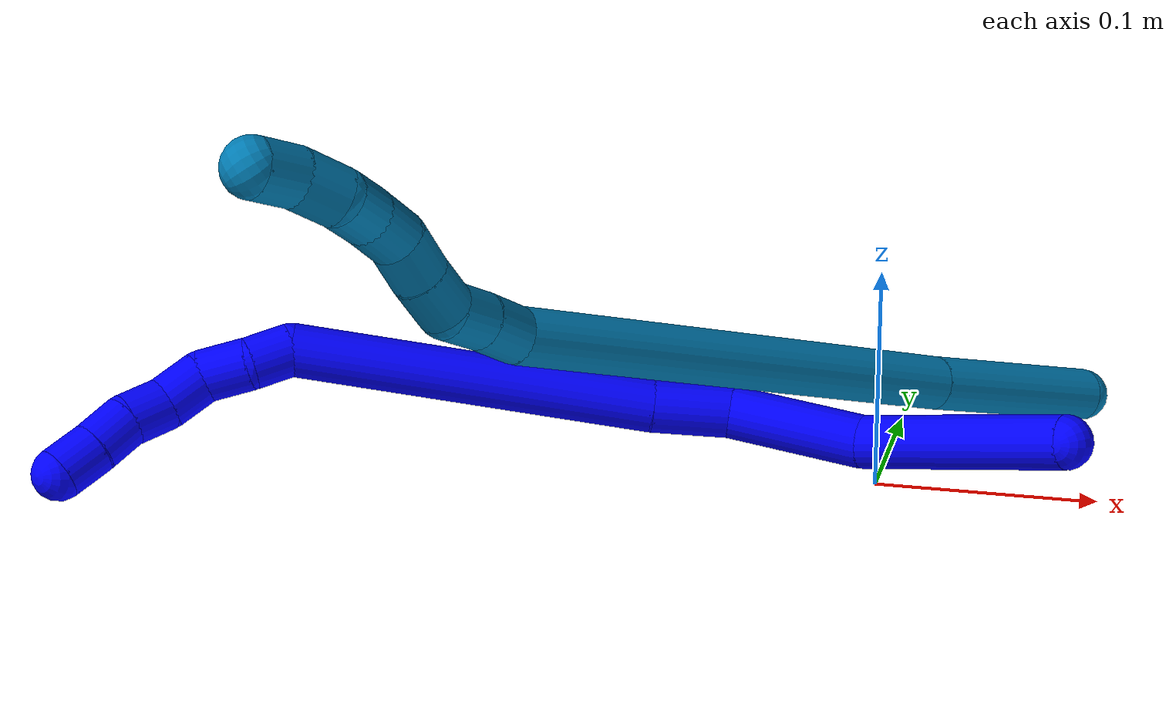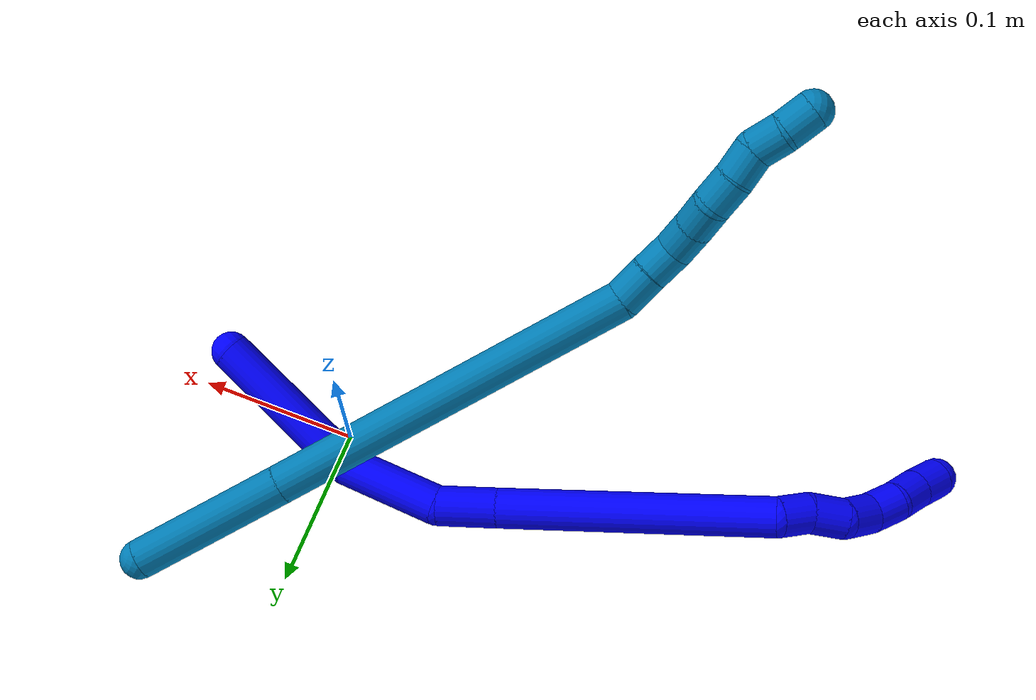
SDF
<sdf version="1.7">
 <world name="default">
  <model name="1">
   <static>0</static>
   <link name="1">
    <collision name="collision-cylinder-e_1_1_4">
     <pose>-0.045508 -0.024077 0.001701 1.50025 -1.08313 -1.02181</pose>
     <geometry><cylinder><radius>0.0125</radius><length>0.103025</length></cylinder></geometry>
     <surface>
      <friction><ode><mu>1.16</mu><mu2>1.16</mu2><slip1>0</slip1><slip2>0</slip2></ode></friction>
      <contact><ode><kp>1e+06</kp><kd>1</kd><max_vel>0</max_vel><min_depth>0.001</min_depth></ode></contact>
     </surface>
    </collision>
    <visual name="visual-cylinder-e_1_1_4">
     <pose>-0.045508 -0.024077 0.001701 1.50025 -1.08313 -1.02181</pose>
     <geometry><cylinder><radius>0.0125</radius><length>0.103025</length></cylinder></geometry>
     <material><ambient>0 0 1 1</ambient></material>
    </visual>
    <collision name="collision-cylinder-e_2_4_5">
     <pose>-0.120693 -0.054285 0.014878 0.490712 -1.15763 -0.324387</pose>
     <geometry><cylinder><radius>0.0125</radius><length>0.064809</length></cylinder></geometry>
     <surface>
      <friction><ode><mu>1.16</mu><mu2>1.16</mu2><slip1>0</slip1><slip2>0</slip2></ode></friction>
      <contact><ode><kp>1e+06</kp><kd>1</kd><max_vel>0</max_vel><min_depth>0.001</min_depth></ode></contact>
     </surface>
    </collision>
    <visual name="visual-cylinder-e_2_4_5">
     <pose>-0.120693 -0.054285 0.014878 0.490712 -1.15763 -0.324387</pose>
     <geometry><cylinder><radius>0.0125</radius><length>0.064809</length></cylinder></geometry>
     <material><ambient>0 0 1 1</ambient></material>
    </visual>
    <collision name="collision-cylinder-e_3_5_6">
     <pose>-0.163569 -0.064252 0.039111 0.292066 -0.780784 -0.120903</pose>
     <geometry><cylinder><radius>0.0125</radius><length>0.037505</length></cylinder></geometry>
     <surface>
      <friction><ode><mu>1.16</mu><mu2>1.16</mu2><slip1>0</slip1><slip2>0</slip2></ode></friction>
      <contact><ode><kp>1e+06</kp><kd>1</kd><max_vel>0</max_vel><min_depth>0.001</min_depth></ode></contact>
     </surface>
    </collision>
    <visual name="visual-cylinder-e_3_5_6">
     <pose>-0.163569 -0.064252 0.039111 0.292066 -0.780784 -0.120903</pose>
     <geometry><cylinder><radius>0.0125</radius><length>0.037505</length></cylinder></geometry>
     <material><ambient>0 0 1 1</ambient></material>
    </visual>
    <collision name="collision-cylinder-e_4_6_7">
     <pose>-0.238991 -0.078864 0.108861 0.186878 -0.820479 -0.081468</pose>
     <geometry><cylinder><radius>0.0125</radius><length>0.170131</length></cylinder></geometry>
     <surface>
      <friction><ode><mu>1.16</mu><mu2>1.16</mu2><slip1>0</slip1><slip2>0</slip2></ode></friction>
      <contact><ode><kp>1e+06</kp><kd>1</kd><max_vel>0</max_vel><min_depth>0.001</min_depth></ode></contact>
     </surface>
    </collision>
    <visual name="visual-cylinder-e_4_6_7">
     <pose>-0.238991 -0.078864 0.108861 0.186878 -0.820479 -0.081468</pose>
     <geometry><cylinder><radius>0.0125</radius><length>0.170131</length></cylinder></geometry>
     <material><ambient>0 0 1 1</ambient></material>
    </visual>
    <collision name="collision-cylinder-e_5_7_8">
     <pose>-0.305098 -0.094464 0.173896 0.540322 -0.392703 -0.11006</pose>
     <geometry><cylinder><radius>0.0125</radius><length>0.020298</length></cylinder></geometry>
     <surface>
      <friction><ode><mu>1.16</mu><mu2>1.16</mu2><slip1>0</slip1><slip2>0</slip2></ode></friction>
      <contact><ode><kp>1e+06</kp><kd>1</kd><max_vel>0</max_vel><min_depth>0.001</min_depth></ode></contact>
     </surface>
    </collision>
    <visual name="visual-cylinder-e_5_7_8">
     <pose>-0.305098 -0.094464 0.173896 0.540322 -0.392703 -0.11006</pose>
     <geometry><cylinder><radius>0.0125</radius><length>0.020298</length></cylinder></geometry>
     <material><ambient>0 0 1 1</ambient></material>
    </visual>
    <collision name="collision-cylinder-e_6_8_9">
     <pose>-0.315806 -0.105355 0.188701 0.73111 -0.644111 -0.254056</pose>
     <geometry><cylinder><radius>0.0125</radius><length>0.022729</length></cylinder></geometry>
     <surface>
      <friction><ode><mu>1.16</mu><mu2>1.16</mu2><slip1>0</slip1><slip2>0</slip2></ode></friction>
      <contact><ode><kp>1e+06</kp><kd>1</kd><max_vel>0</max_vel><min_depth>0.001</min_depth></ode></contact>
     </surface>
    </collision>
    <visual name="visual-cylinder-e_6_8_9">
     <pose>-0.315806 -0.105355 0.188701 0.73111 -0.644111 -0.254056</pose>
     <geometry><cylinder><radius>0.0125</radius><length>0.022729</length></cylinder></geometry>
     <material><ambient>0 0 1 1</ambient></material>
    </visual>
    <collision name="collision-cylinder-e_7_9_10">
     <pose>-0.32432 -0.118508 0.203293 0.735707 -0.158713 -0.061277</pose>
     <geometry><cylinder><radius>0.0125</radius><length>0.021384</length></cylinder></geometry>
     <surface>
      <friction><ode><mu>1.16</mu><mu2>1.16</mu2><slip1>0</slip1><slip2>0</slip2></ode></friction>
      <contact><ode><kp>1e+06</kp><kd>1</kd><max_vel>0</max_vel><min_depth>0.001</min_depth></ode></contact>
     </surface>
    </collision>
    <visual name="visual-cylinder-e_7_9_10">
     <pose>-0.32432 -0.118508 0.203293 0.735707 -0.158713 -0.061277</pose>
     <geometry><cylinder><radius>0.0125</radius><length>0.021384</length></cylinder></geometry>
     <material><ambient>0 0 1 1</ambient></material>
    </visual>
    <collision name="collision-cylinder-e_8_10_11">
     <pose>-0.327604 -0.129722 0.220154 0.428671 -0.159177 -0.034719</pose>
     <geometry><cylinder><radius>0.0125</radius><length>0.020119</length></cylinder></geometry>
     <surface>
      <friction><ode><mu>1.16</mu><mu2>1.16</mu2><slip1>0</slip1><slip2>0</slip2></ode></friction>
      <contact><ode><kp>1e+06</kp><kd>1</kd><max_vel>0</max_vel><min_depth>0.001</min_depth></ode></contact>
     </surface>
    </collision>
    <visual name="visual-cylinder-e_8_10_11">
     <pose>-0.327604 -0.129722 0.220154 0.428671 -0.159177 -0.034719</pose>
     <geometry><cylinder><radius>0.0125</radius><length>0.020119</length></cylinder></geometry>
     <material><ambient>0 0 1 1</ambient></material>
    </visual>
    <collision name="collision-cylinder-e_9_11_12">
     <pose>-0.328654 -0.139523 0.237406 0.604126 0.054568 0.017007</pose>
     <geometry><cylinder><radius>0.0125</radius><length>0.02</length></cylinder></geometry>
     <surface>
      <friction><ode><mu>1.16</mu><mu2>1.16</mu2><slip1>0</slip1><slip2>0</slip2></ode></friction>
      <contact><ode><kp>1e+06</kp><kd>1</kd><max_vel>0</max_vel><min_depth>0.001</min_depth></ode></contact>
     </surface>
    </collision>
    <visual name="visual-cylinder-e_9_11_12">
     <pose>-0.328654 -0.139523 0.237406 0.604126 0.054568 0.017007</pose>
     <geometry><cylinder><radius>0.0125</radius><length>0.02</length></cylinder></geometry>
     <material><ambient>0 0 1 1</ambient></material>
    </visual>
    <collision name="collision-cylinder-e_10_12_2">
     <pose>-0.328273 -0.150728 0.253952 0.586417 -0.016447 -0.004966</pose>
     <geometry><cylinder><radius>0.0125</radius><length>0.02</length></cylinder></geometry>
     <surface>
      <friction><ode><mu>1.16</mu><mu2>1.16</mu2><slip1>0</slip1><slip2>0</slip2></ode></friction>
      <contact><ode><kp>1e+06</kp><kd>1</kd><max_vel>0</max_vel><min_depth>0.001</min_depth></ode></contact>
     </surface>
    </collision>
    <visual name="visual-cylinder-e_10_12_2">
     <pose>-0.328273 -0.150728 0.253952 0.586417 -0.016447 -0.004966</pose>
     <geometry><cylinder><radius>0.0125</radius><length>0.02</length></cylinder></geometry>
     <material><ambient>0 0 1 1</ambient></material>
    </visual>
    <collision name="collision-sphere-2">
     <pose>-0.328437 -0.156261 0.26228 0 -0 0</pose>
     <geometry><sphere><radius>0.0125</radius></sphere></geometry>
     <surface>
      <friction><ode><mu>1.16</mu><mu2>1.16</mu2><slip1>0</slip1><slip2>0</slip2></ode></friction>
      <contact><ode><kp>1e+06</kp><kd>1</kd><max_vel>0</max_vel><min_depth>0.001</min_depth></ode></contact>
     </surface>
    </collision>
    <visual name="visual-sphere-2">
     <pose>-0.328437 -0.156261 0.26228 0 -0 0</pose>
     <geometry><sphere><radius>0.0125</radius></sphere></geometry>
     <material><ambient>0 0 1 1</ambient></material>
    </visual>
    <collision name="collision-sphere-12">
     <pose>-0.328108 -0.145195 0.245623 0 -0 0</pose>
     <geometry><sphere><radius>0.0125</radius></sphere></geometry>
     <surface>
      <friction><ode><mu>1.16</mu><mu2>1.16</mu2><slip1>0</slip1><slip2>0</slip2></ode></friction>
      <contact><ode><kp>1e+06</kp><kd>1</kd><max_vel>0</max_vel><min_depth>0.001</min_depth></ode></contact>
     </surface>
    </collision>
    <visual name="visual-sphere-12">
     <pose>-0.328108 -0.145195 0.245623 0 -0 0</pose>
     <geometry><sphere><radius>0.0125</radius></sphere></geometry>
     <material><ambient>0 0 1 1</ambient></material>
    </visual>
    <collision name="collision-sphere-11">
     <pose>-0.329199 -0.133851 0.229188 0 -0 0</pose>
     <geometry><sphere><radius>0.0125</radius></sphere></geometry>
     <surface>
      <friction><ode><mu>1.16</mu><mu2>1.16</mu2><slip1>0</slip1><slip2>0</slip2></ode></friction>
      <contact><ode><kp>1e+06</kp><kd>1</kd><max_vel>0</max_vel><min_depth>0.001</min_depth></ode></contact>
     </surface>
    </collision>
    <visual name="visual-sphere-11">
     <pose>-0.329199 -0.133851 0.229188 0 -0 0</pose>
     <geometry><sphere><radius>0.0125</radius></sphere></geometry>
     <material><ambient>0 0 1 1</ambient></material>
    </visual>
    <collision name="collision-sphere-10">
     <pose>-0.32601 -0.125594 0.21112 0 -0 0</pose>
     <geometry><sphere><radius>0.0125</radius></sphere></geometry>
     <surface>
      <friction><ode><mu>1.16</mu><mu2>1.16</mu2><slip1>0</slip1><slip2>0</slip2></ode></friction>
      <contact><ode><kp>1e+06</kp><kd>1</kd><max_vel>0</max_vel><min_depth>0.001</min_depth></ode></contact>
     </surface>
    </collision>
    <visual name="visual-sphere-10">
     <pose>-0.32601 -0.125594 0.21112 0 -0 0</pose>
     <geometry><sphere><radius>0.0125</radius></sphere></geometry>
     <material><ambient>0 0 1 1</ambient></material>
    </visual>
    <collision name="collision-sphere-9">
     <pose>-0.32263 -0.111423 0.195467 0 -0 0</pose>
     <geometry><sphere><radius>0.0125</radius></sphere></geometry>
     <surface>
      <friction><ode><mu>1.16</mu><mu2>1.16</mu2><slip1>0</slip1><slip2>0</slip2></ode></friction>
      <contact><ode><kp>1e+06</kp><kd>1</kd><max_vel>0</max_vel><min_depth>0.001</min_depth></ode></contact>
     </surface>
    </collision>
    <visual name="visual-sphere-9">
     <pose>-0.32263 -0.111423 0.195467 0 -0 0</pose>
     <geometry><sphere><radius>0.0125</radius></sphere></geometry>
     <material><ambient>0 0 1 1</ambient></material>
    </visual>
    <collision name="collision-sphere-4">
     <pose>-0.091015 -0.048154 0.003403 0 -0 0</pose>
     <geometry><sphere><radius>0.0125</radius></sphere></geometry>
     <surface>
      <friction><ode><mu>1.16</mu><mu2>1.16</mu2><slip1>0</slip1><slip2>0</slip2></ode></friction>
      <contact><ode><kp>1e+06</kp><kd>1</kd><max_vel>0</max_vel><min_depth>0.001</min_depth></ode></contact>
     </surface>
    </collision>
    <visual name="visual-sphere-4">
     <pose>-0.091015 -0.048154 0.003403 0 -0 0</pose>
     <geometry><sphere><radius>0.0125</radius></sphere></geometry>
     <material><ambient>0 0 1 1</ambient></material>
    </visual>
    <collision name="collision-sphere-1">
     <geometry><sphere><radius>0.0125</radius></sphere></geometry>
     <surface>
      <friction><ode><mu>1.16</mu><mu2>1.16</mu2><slip1>0</slip1><slip2>0</slip2></ode></friction>
      <contact><ode><kp>1e+06</kp><kd>1</kd><max_vel>0</max_vel><min_depth>0.001</min_depth></ode></contact>
     </surface>
    </collision>
    <visual name="visual-sphere-1">
     <geometry><sphere><radius>0.0125</radius></sphere></geometry>
     <material><ambient>0 0 1 1</ambient></material>
    </visual>
    <collision name="collision-sphere-8">
     <pose>-0.308982 -0.099288 0.181936 0 -0 0</pose>
     <geometry><sphere><radius>0.0125</radius></sphere></geometry>
     <surface>
      <friction><ode><mu>1.16</mu><mu2>1.16</mu2><slip1>0</slip1><slip2>0</slip2></ode></friction>
      <contact><ode><kp>1e+06</kp><kd>1</kd><max_vel>0</max_vel><min_depth>0.001</min_depth></ode></contact>
     </surface>
    </collision>
    <visual name="visual-sphere-8">
     <pose>-0.308982 -0.099288 0.181936 0 -0 0</pose>
     <geometry><sphere><radius>0.0125</radius></sphere></geometry>
     <material><ambient>0 0 1 1</ambient></material>
    </visual>
    <collision name="collision-sphere-5">
     <pose>-0.150371 -0.060417 0.026354 0 -0 0</pose>
     <geometry><sphere><radius>0.0125</radius></sphere></geometry>
     <surface>
      <friction><ode><mu>1.16</mu><mu2>1.16</mu2><slip1>0</slip1><slip2>0</slip2></ode></friction>
      <contact><ode><kp>1e+06</kp><kd>1</kd><max_vel>0</max_vel><min_depth>0.001</min_depth></ode></contact>
     </surface>
    </collision>
    <visual name="visual-sphere-5">
     <pose>-0.150371 -0.060417 0.026354 0 -0 0</pose>
     <geometry><sphere><radius>0.0125</radius></sphere></geometry>
     <material><ambient>0 0 1 1</ambient></material>
    </visual>
    <collision name="collision-sphere-6">
     <pose>-0.176768 -0.068088 0.051868 0 -0 0</pose>
     <geometry><sphere><radius>0.0125</radius></sphere></geometry>
     <surface>
      <friction><ode><mu>1.16</mu><mu2>1.16</mu2><slip1>0</slip1><slip2>0</slip2></ode></friction>
      <contact><ode><kp>1e+06</kp><kd>1</kd><max_vel>0</max_vel><min_depth>0.001</min_depth></ode></contact>
     </surface>
    </collision>
    <visual name="visual-sphere-6">
     <pose>-0.176768 -0.068088 0.051868 0 -0 0</pose>
     <geometry><sphere><radius>0.0125</radius></sphere></geometry>
     <material><ambient>0 0 1 1</ambient></material>
    </visual>
    <collision name="collision-sphere-7">
     <pose>-0.301214 -0.089641 0.165855 0 -0 0</pose>
     <geometry><sphere><radius>0.0125</radius></sphere></geometry>
     <surface>
      <friction><ode><mu>1.16</mu><mu2>1.16</mu2><slip1>0</slip1><slip2>0</slip2></ode></friction>
      <contact><ode><kp>1e+06</kp><kd>1</kd><max_vel>0</max_vel><min_depth>0.001</min_depth></ode></contact>
     </surface>
    </collision>
    <visual name="visual-sphere-7">
     <pose>-0.301214 -0.089641 0.165855 0 -0 0</pose>
     <geometry><sphere><radius>0.0125</radius></sphere></geometry>
     <material><ambient>0 0 1 1</ambient></material>
    </visual>
    <inertial>
     <pose>-0.198681 -0.074174 0.095099 0 -0 0</pose>
     <mass>0.5</mass>
     <inertia>
      <ixx>0.000238</ixx>
      <ixy>0</ixy>
      <ixz>0</ixz>
      <iyy>0.000448</iyy>
      <iyz>0</iyz>
      <izz>0.000547</izz>
     </inertia>
    </inertial>
   </link>
   <pose>0.085407 -0.015612 0.032172 1.43202 0.286959 -0.476211</pose>
  </model>
  <model name="9">
   <static>0</static>
   <link name="9">
    <collision name="collision-cylinder-e_1_1_4">
     <pose>-0.007953 -0.038077 0.030235 0.899689 -0.162138 -0.078422</pose>
     <geometry><cylinder><radius>0.0125</radius><length>0.098535</length></cylinder></geometry>
     <surface>
      <friction><ode><mu>1.16</mu><mu2>1.16</mu2><slip1>0</slip1><slip2>0</slip2></ode></friction>
      <contact><ode><kp>1e+06</kp><kd>1</kd><max_vel>0</max_vel><min_depth>0.001</min_depth></ode></contact>
     </surface>
    </collision>
    <visual name="visual-cylinder-e_1_1_4">
     <pose>-0.007953 -0.038077 0.030235 0.899689 -0.162138 -0.078422</pose>
     <geometry><cylinder><radius>0.0125</radius><length>0.098535</length></cylinder></geometry>
     <material><ambient>0 0.490196 0.709804 1</ambient></material>
    </visual>
    <collision name="collision-cylinder-e_2_4_5">
     <pose>-0.033366 -0.169339 0.131118 0.922102 -0.148208 -0.073725</pose>
     <geometry><cylinder><radius>0.0125</radius><length>0.236468</length></cylinder></geometry>
     <surface>
      <friction><ode><mu>1.16</mu><mu2>1.16</mu2><slip1>0</slip1><slip2>0</slip2></ode></friction>
      <contact><ode><kp>1e+06</kp><kd>1</kd><max_vel>0</max_vel><min_depth>0.001</min_depth></ode></contact>
     </surface>
    </collision>
    <visual name="visual-cylinder-e_2_4_5">
     <pose>-0.033366 -0.169339 0.131118 0.922102 -0.148208 -0.073725</pose>
     <geometry><cylinder><radius>0.0125</radius><length>0.236468</length></cylinder></geometry>
     <material><ambient>0 0.490196 0.709804 1</ambient></material>
    </visual>
    <collision name="collision-cylinder-e_3_5_6">
     <pose>-0.053724 -0.273098 0.205507 1.2308 -0.252921 -0.179288</pose>
     <geometry><cylinder><radius>0.0125</radius><length>0.02317</length></cylinder></geometry>
     <surface>
      <friction><ode><mu>1.16</mu><mu2>1.16</mu2><slip1>0</slip1><slip2>0</slip2></ode></friction>
      <contact><ode><kp>1e+06</kp><kd>1</kd><max_vel>0</max_vel><min_depth>0.001</min_depth></ode></contact>
     </surface>
    </collision>
    <visual name="visual-cylinder-e_3_5_6">
     <pose>-0.053724 -0.273098 0.205507 1.2308 -0.252921 -0.179288</pose>
     <geometry><cylinder><radius>0.0125</radius><length>0.02317</length></cylinder></geometry>
     <material><ambient>0 0.490196 0.709804 1</ambient></material>
    </visual>
    <collision name="collision-cylinder-e_4_6_7">
     <pose>-0.059412 -0.292804 0.213076 1.17374 -0.274615 -0.18327</pose>
     <geometry><cylinder><radius>0.0125</radius><length>0.020575</length></cylinder></geometry>
     <surface>
      <friction><ode><mu>1.16</mu><mu2>1.16</mu2><slip1>0</slip1><slip2>0</slip2></ode></friction>
      <contact><ode><kp>1e+06</kp><kd>1</kd><max_vel>0</max_vel><min_depth>0.001</min_depth></ode></contact>
     </surface>
    </collision>
    <visual name="visual-cylinder-e_4_6_7">
     <pose>-0.059412 -0.292804 0.213076 1.17374 -0.274615 -0.18327</pose>
     <geometry><cylinder><radius>0.0125</radius><length>0.020575</length></cylinder></geometry>
     <material><ambient>0 0.490196 0.709804 1</ambient></material>
    </visual>
    <collision name="collision-cylinder-e_5_7_8">
     <pose>-0.061651 -0.312459 0.21701 1.56085 0.052314 0.051796</pose>
     <geometry><cylinder><radius>0.0125</radius><length>0.021078</length></cylinder></geometry>
     <surface>
      <friction><ode><mu>1.16</mu><mu2>1.16</mu2><slip1>0</slip1><slip2>0</slip2></ode></friction>
      <contact><ode><kp>1e+06</kp><kd>1</kd><max_vel>0</max_vel><min_depth>0.001</min_depth></ode></contact>
     </surface>
    </collision>
    <visual name="visual-cylinder-e_5_7_8">
     <pose>-0.061651 -0.312459 0.21701 1.56085 0.052314 0.051796</pose>
     <geometry><cylinder><radius>0.0125</radius><length>0.021078</length></cylinder></geometry>
     <material><ambient>0 0.490196 0.709804 1</ambient></material>
    </visual>
    <collision name="collision-cylinder-e_6_8_9">
     <pose>-0.060256 -0.332984 0.216521 1.63012 0.084087 0.089222</pose>
     <geometry><cylinder><radius>0.0125</radius><length>0.020108</length></cylinder></geometry>
     <surface>
      <friction><ode><mu>1.16</mu><mu2>1.16</mu2><slip1>0</slip1><slip2>0</slip2></ode></friction>
      <contact><ode><kp>1e+06</kp><kd>1</kd><max_vel>0</max_vel><min_depth>0.001</min_depth></ode></contact>
     </surface>
    </collision>
    <visual name="visual-cylinder-e_6_8_9">
     <pose>-0.060256 -0.332984 0.216521 1.63012 0.084087 0.089222</pose>
     <geometry><cylinder><radius>0.0125</radius><length>0.020108</length></cylinder></geometry>
     <material><ambient>0 0.490196 0.709804 1</ambient></material>
    </visual>
    <collision name="collision-cylinder-e_7_9_10">
     <pose>-0.061105 -0.352731 0.217585 1.4023 -0.169728 -0.143393</pose>
     <geometry><cylinder><radius>0.0125</radius><length>0.02006</length></cylinder></geometry>
     <surface>
      <friction><ode><mu>1.16</mu><mu2>1.16</mu2><slip1>0</slip1><slip2>0</slip2></ode></friction>
      <contact><ode><kp>1e+06</kp><kd>1</kd><max_vel>0</max_vel><min_depth>0.001</min_depth></ode></contact>
     </surface>
    </collision>
    <visual name="visual-cylinder-e_7_9_10">
     <pose>-0.061105 -0.352731 0.217585 1.4023 -0.169728 -0.143393</pose>
     <geometry><cylinder><radius>0.0125</radius><length>0.02006</length></cylinder></geometry>
     <material><ambient>0 0.490196 0.709804 1</ambient></material>
    </visual>
    <collision name="collision-cylinder-e_8_10_11">
     <pose>-0.066018 -0.371809 0.220853 1.39996 -0.327622 -0.276658</pose>
     <geometry><cylinder><radius>0.0125</radius><length>0.020004</length></cylinder></geometry>
     <surface>
      <friction><ode><mu>1.16</mu><mu2>1.16</mu2><slip1>0</slip1><slip2>0</slip2></ode></friction>
      <contact><ode><kp>1e+06</kp><kd>1</kd><max_vel>0</max_vel><min_depth>0.001</min_depth></ode></contact>
     </surface>
    </collision>
    <visual name="visual-cylinder-e_8_10_11">
     <pose>-0.066018 -0.371809 0.220853 1.39996 -0.327622 -0.276658</pose>
     <geometry><cylinder><radius>0.0125</radius><length>0.020004</length></cylinder></geometry>
     <material><ambient>0 0.490196 0.709804 1</ambient></material>
    </visual>
    <collision name="collision-cylinder-e_9_11_12">
     <pose>-0.06914 -0.390186 0.226726 1.1303 0.009655 0.006122</pose>
     <geometry><cylinder><radius>0.0125</radius><length>0.02</length></cylinder></geometry>
     <surface>
      <friction><ode><mu>1.16</mu><mu2>1.16</mu2><slip1>0</slip1><slip2>0</slip2></ode></friction>
      <contact><ode><kp>1e+06</kp><kd>1</kd><max_vel>0</max_vel><min_depth>0.001</min_depth></ode></contact>
     </surface>
    </collision>
    <visual name="visual-cylinder-e_9_11_12">
     <pose>-0.06914 -0.390186 0.226726 1.1303 0.009655 0.006122</pose>
     <geometry><cylinder><radius>0.0125</radius><length>0.02</length></cylinder></geometry>
     <material><ambient>0 0.490196 0.709804 1</ambient></material>
    </visual>
    <collision name="collision-cylinder-e_10_12_2">
     <pose>-0.071324 -0.407659 0.235867 1.04619 -0.230054 -0.133059</pose>
     <geometry><cylinder><radius>0.0125</radius><length>0.020002</length></cylinder></geometry>
     <surface>
      <friction><ode><mu>1.16</mu><mu2>1.16</mu2><slip1>0</slip1><slip2>0</slip2></ode></friction>
      <contact><ode><kp>1e+06</kp><kd>1</kd><max_vel>0</max_vel><min_depth>0.001</min_depth></ode></contact>
     </surface>
    </collision>
    <visual name="visual-cylinder-e_10_12_2">
     <pose>-0.071324 -0.407659 0.235867 1.04619 -0.230054 -0.133059</pose>
     <geometry><cylinder><radius>0.0125</radius><length>0.020002</length></cylinder></geometry>
     <material><ambient>0 0.490196 0.709804 1</ambient></material>
    </visual>
    <collision name="collision-sphere-2">
     <pose>-0.073605 -0.416087 0.240744 0 -0 0</pose>
     <geometry><sphere><radius>0.0125</radius></sphere></geometry>
     <surface>
      <friction><ode><mu>1.16</mu><mu2>1.16</mu2><slip1>0</slip1><slip2>0</slip2></ode></friction>
      <contact><ode><kp>1e+06</kp><kd>1</kd><max_vel>0</max_vel><min_depth>0.001</min_depth></ode></contact>
     </surface>
    </collision>
    <visual name="visual-sphere-2">
     <pose>-0.073605 -0.416087 0.240744 0 -0 0</pose>
     <geometry><sphere><radius>0.0125</radius></sphere></geometry>
     <material><ambient>0 0.490196 0.709804 1</ambient></material>
    </visual>
    <collision name="collision-sphere-12">
     <pose>-0.069044 -0.399231 0.23099 0 -0 0</pose>
     <geometry><sphere><radius>0.0125</radius></sphere></geometry>
     <surface>
      <friction><ode><mu>1.16</mu><mu2>1.16</mu2><slip1>0</slip1><slip2>0</slip2></ode></friction>
      <contact><ode><kp>1e+06</kp><kd>1</kd><max_vel>0</max_vel><min_depth>0.001</min_depth></ode></contact>
     </surface>
    </collision>
    <visual name="visual-sphere-12">
     <pose>-0.069044 -0.399231 0.23099 0 -0 0</pose>
     <geometry><sphere><radius>0.0125</radius></sphere></geometry>
     <material><ambient>0 0.490196 0.709804 1</ambient></material>
    </visual>
    <collision name="collision-sphere-11">
     <pose>-0.069237 -0.381141 0.222463 0 -0 0</pose>
     <geometry><sphere><radius>0.0125</radius></sphere></geometry>
     <surface>
      <friction><ode><mu>1.16</mu><mu2>1.16</mu2><slip1>0</slip1><slip2>0</slip2></ode></friction>
      <contact><ode><kp>1e+06</kp><kd>1</kd><max_vel>0</max_vel><min_depth>0.001</min_depth></ode></contact>
     </surface>
    </collision>
    <visual name="visual-sphere-11">
     <pose>-0.069237 -0.381141 0.222463 0 -0 0</pose>
     <geometry><sphere><radius>0.0125</radius></sphere></geometry>
     <material><ambient>0 0.490196 0.709804 1</ambient></material>
    </visual>
    <collision name="collision-sphere-10">
     <pose>-0.0628 -0.362477 0.219243 0 -0 0</pose>
     <geometry><sphere><radius>0.0125</radius></sphere></geometry>
     <surface>
      <friction><ode><mu>1.16</mu><mu2>1.16</mu2><slip1>0</slip1><slip2>0</slip2></ode></friction>
      <contact><ode><kp>1e+06</kp><kd>1</kd><max_vel>0</max_vel><min_depth>0.001</min_depth></ode></contact>
     </surface>
    </collision>
    <visual name="visual-sphere-10">
     <pose>-0.0628 -0.362477 0.219243 0 -0 0</pose>
     <geometry><sphere><radius>0.0125</radius></sphere></geometry>
     <material><ambient>0 0.490196 0.709804 1</ambient></material>
    </visual>
    <collision name="collision-sphere-9">
     <pose>-0.059411 -0.342985 0.215927 0 -0 0</pose>
     <geometry><sphere><radius>0.0125</radius></sphere></geometry>
     <surface>
      <friction><ode><mu>1.16</mu><mu2>1.16</mu2><slip1>0</slip1><slip2>0</slip2></ode></friction>
      <contact><ode><kp>1e+06</kp><kd>1</kd><max_vel>0</max_vel><min_depth>0.001</min_depth></ode></contact>
     </surface>
    </collision>
    <visual name="visual-sphere-9">
     <pose>-0.059411 -0.342985 0.215927 0 -0 0</pose>
     <geometry><sphere><radius>0.0125</radius></sphere></geometry>
     <material><ambient>0 0.490196 0.709804 1</ambient></material>
    </visual>
    <collision name="collision-sphere-4">
     <pose>-0.015906 -0.076154 0.060471 0 -0 0</pose>
     <geometry><sphere><radius>0.0125</radius></sphere></geometry>
     <surface>
      <friction><ode><mu>1.16</mu><mu2>1.16</mu2><slip1>0</slip1><slip2>0</slip2></ode></friction>
      <contact><ode><kp>1e+06</kp><kd>1</kd><max_vel>0</max_vel><min_depth>0.001</min_depth></ode></contact>
     </surface>
    </collision>
    <visual name="visual-sphere-4">
     <pose>-0.015906 -0.076154 0.060471 0 -0 0</pose>
     <geometry><sphere><radius>0.0125</radius></sphere></geometry>
     <material><ambient>0 0.490196 0.709804 1</ambient></material>
    </visual>
    <collision name="collision-sphere-1">
     <geometry><sphere><radius>0.0125</radius></sphere></geometry>
     <surface>
      <friction><ode><mu>1.16</mu><mu2>1.16</mu2><slip1>0</slip1><slip2>0</slip2></ode></friction>
      <contact><ode><kp>1e+06</kp><kd>1</kd><max_vel>0</max_vel><min_depth>0.001</min_depth></ode></contact>
     </surface>
    </collision>
    <visual name="visual-sphere-1">
     <geometry><sphere><radius>0.0125</radius></sphere></geometry>
     <material><ambient>0 0.490196 0.709804 1</ambient></material>
    </visual>
    <collision name="collision-sphere-8">
     <pose>-0.0611 -0.322983 0.217115 0 -0 0</pose>
     <geometry><sphere><radius>0.0125</radius></sphere></geometry>
     <surface>
      <friction><ode><mu>1.16</mu><mu2>1.16</mu2><slip1>0</slip1><slip2>0</slip2></ode></friction>
      <contact><ode><kp>1e+06</kp><kd>1</kd><max_vel>0</max_vel><min_depth>0.001</min_depth></ode></contact>
     </surface>
    </collision>
    <visual name="visual-sphere-8">
     <pose>-0.0611 -0.322983 0.217115 0 -0 0</pose>
     <geometry><sphere><radius>0.0125</radius></sphere></geometry>
     <material><ambient>0 0.490196 0.709804 1</ambient></material>
    </visual>
    <collision name="collision-sphere-5">
     <pose>-0.050825 -0.262523 0.201766 0 -0 0</pose>
     <geometry><sphere><radius>0.0125</radius></sphere></geometry>
     <surface>
      <friction><ode><mu>1.16</mu><mu2>1.16</mu2><slip1>0</slip1><slip2>0</slip2></ode></friction>
      <contact><ode><kp>1e+06</kp><kd>1</kd><max_vel>0</max_vel><min_depth>0.001</min_depth></ode></contact>
     </surface>
    </collision>
    <visual name="visual-sphere-5">
     <pose>-0.050825 -0.262523 0.201766 0 -0 0</pose>
     <geometry><sphere><radius>0.0125</radius></sphere></geometry>
     <material><ambient>0 0.490196 0.709804 1</ambient></material>
    </visual>
    <collision name="collision-sphere-6">
     <pose>-0.056623 -0.283672 0.209247 0 -0 0</pose>
     <geometry><sphere><radius>0.0125</radius></sphere></geometry>
     <surface>
      <friction><ode><mu>1.16</mu><mu2>1.16</mu2><slip1>0</slip1><slip2>0</slip2></ode></friction>
      <contact><ode><kp>1e+06</kp><kd>1</kd><max_vel>0</max_vel><min_depth>0.001</min_depth></ode></contact>
     </surface>
    </collision>
    <visual name="visual-sphere-6">
     <pose>-0.056623 -0.283672 0.209247 0 -0 0</pose>
     <geometry><sphere><radius>0.0125</radius></sphere></geometry>
     <material><ambient>0 0.490196 0.709804 1</ambient></material>
    </visual>
    <collision name="collision-sphere-7">
     <pose>-0.062202 -0.301936 0.216905 0 -0 0</pose>
     <geometry><sphere><radius>0.0125</radius></sphere></geometry>
     <surface>
      <friction><ode><mu>1.16</mu><mu2>1.16</mu2><slip1>0</slip1><slip2>0</slip2></ode></friction>
      <contact><ode><kp>1e+06</kp><kd>1</kd><max_vel>0</max_vel><min_depth>0.001</min_depth></ode></contact>
     </surface>
    </collision>
    <visual name="visual-sphere-7">
     <pose>-0.062202 -0.301936 0.216905 0 -0 0</pose>
     <geometry><sphere><radius>0.0125</radius></sphere></geometry>
     <material><ambient>0 0.490196 0.709804 1</ambient></material>
    </visual>
    <inertial>
     <pose>-0.038015 -0.1998 0.140186 0 -0 0</pose>
     <mass>0.5</mass>
     <inertia>
      <ixx>0.001096</ixx>
      <ixy>0</ixy>
      <ixz>0</ixz>
      <iyy>0.000614</iyy>
      <iyz>0</iyz>
      <izz>0.00115</izz>
     </inertia>
    </inertial>
   </link>
   <pose>0.085369 0.123234 0.011944 -2.16373 -0.351193 2.12392</pose>
  </model>
 </world>
</sdf>
